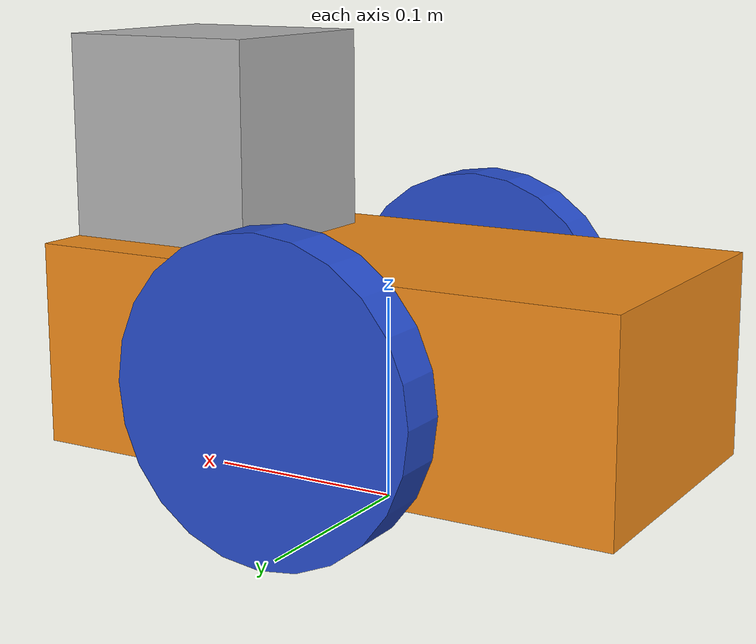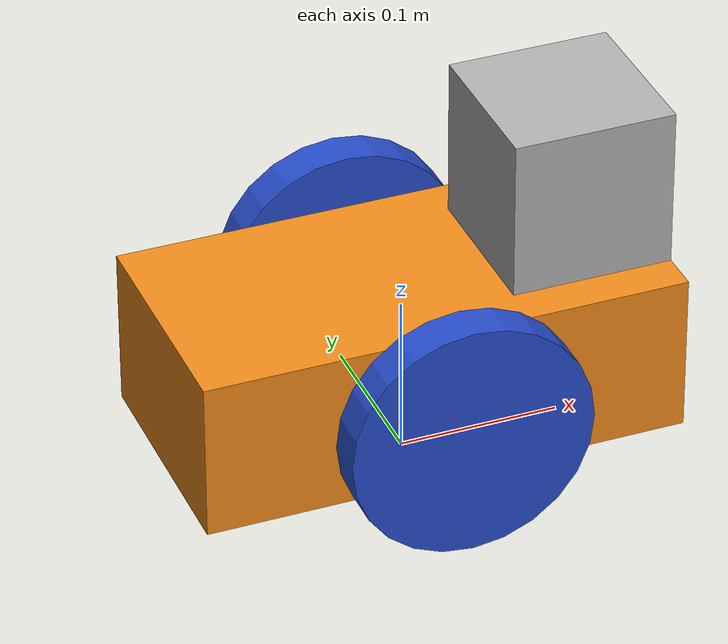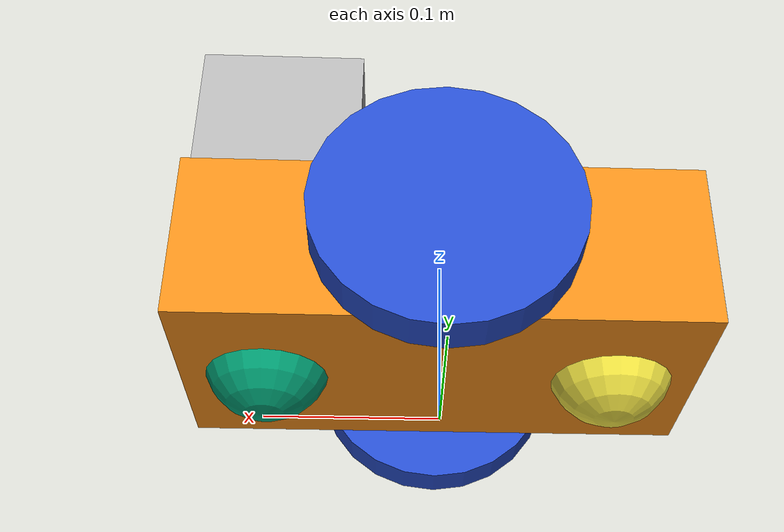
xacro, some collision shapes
<?xml version='1.0'?>

<robot name="myrobot" xmlns:xacro="http://www.ros.org/wiki/xacro">

  <xacro:property name="cameraSize" value="0.05"/>
  <xacro:property name="cameraMass" value="0.15"/>
  <xacro:property name="wheeldiam" value="0.15" />
  <xacro:property name="wheel_separation" value="0.20"/>
  <xacro:property name="M_PI" value="3.1415926535897931" />
  <xacro:property name="chassis_len" value="0.3" />

  <xacro:include filename="$(find mybot_description)/urdf/materials.xacro" />
  <xacro:include filename="$(find mybot_description)/urdf/mybot.gazebo.xacro" />

  <link name="base_link" />

  <!-- for robot base frame -->
  <link name='chassis'>

    <visual>
      <origin xyz="0 0 0" rpy="0 0 0"/>
      <geometry>
        <box size="${chassis_len} ${wheel_separation - 0.05} .1"/>
      </geometry>
      <material name="orange"/>
    </visual>

    <collision>
      <geometry>
        <box size="${chassis_len} ${wheel_separation - 0.05} .1"/>
      </geometry>
    </collision>

    <inertial>
      <mass value="15.0"/>
      <inertia
          ixx="0.5" ixy="0" ixz="0"
          iyy="1.0" iyz="0"
          izz="0.1"
      />
    </inertial>
  </link>

  <joint name="base_to_chassis_joint" type="fixed">
    <parent link="base_link"/>
    <child link="chassis"/>
    <origin xyz="0 0 ${wheeldiam/2}"/>
  </joint>

<!-- for caster -->
  <xacro:macro name="caster_visual" params="prefix reflect">
    <link name='${prefix}_caster_visual'>
      <visual>
        <geometry>
          <sphere radius="${wheeldiam/4}"/>
        </geometry>
      </visual>

      <collision>
        <geometry>
          <sphere radius="${wheeldiam/4}"/>
        </geometry>
        <surface>
          <friction>
            <ode>
              <mu>0</mu>
              <mu2>0</mu2>
              <slip1>1.0</slip1>
              <slip2>1.0</slip2>
            </ode>
          </friction>
        </surface>
      </collision>

      <inertial>
        <mass value="0.1"/>
        <origin xyz="0.0 0 0.1" rpy="0 0 0"/>
        <inertia
            ixx="0.5" ixy="0" ixz="0"
            iyy="1.0" iyz="0"
            izz="0.1"
        />
      </inertial>
    </link>

    <joint name="${prefix}_chassis_joint" type="fixed">
        <parent link="chassis"/>
        <child link="${prefix}_caster_visual"/>
        <origin xyz="${reflect*wheel_separation/2} 0 -${wheeldiam/4}"/>
    </joint>
  </xacro:macro>

  <xacro:caster_visual prefix="front" reflect="1"/>
  <xacro:caster_visual prefix="back" reflect="-1"/>

<!-- for wheel -->
  <xacro:macro name="wheel" params="prefix reflect">

    <link name="${prefix}_wheel">
      <visual>
        <origin xyz="0 0 0" rpy="${M_PI/2} 0 0"/>
        <geometry>
          <cylinder radius="${wheeldiam/2}" length="0.025"/>
        </geometry>
        <material name="blue"/>
      </visual>

      <collision>
        <origin xyz="0 0 0" rpy="${M_PI/2} 0 0"/>
        <geometry>
          <cylinder radius="${wheeldiam/2}" length="0.05"/>
        </geometry>
      </collision>

      <inertial>
        <origin xyz="0 0 0" rpy="${M_PI/2} 0 0"/>
        <mass value="2.5"/>
        <cylinder_inertia m="5" r="0.1" h="0.05"/>
        <inertia
          ixx="1.0" ixy="0.0" ixz="0.0"
          iyy="1.0" iyz="0.0"
          izz="1.0"/>
      </inertial>
    </link>

    <joint name="${prefix}_wheel_hinge" type="continuous">
      <origin xyz="0 ${reflect*wheel_separation/2} 0" rpy="0 0 0"/>
      <child link="${prefix}_wheel"/>
      <parent link="chassis"/>
      <axis xyz="0 1 0" rpy="0 0 0"/>
      <limit effort="100" velocity="100"/>
      <joint_properties damping="0.0" friction="0.0"/>
    </joint>

  </xacro:macro>

  <xacro:wheel prefix="right" reflect="-1" />
  <xacro:wheel prefix="left" reflect="1" />

  <!-- for camera  -->
  <link name="camera">
    <collision>
      <origin xyz="0 0 0" rpy="0 0 0"/>
      <geometry>
        <box size="${cameraSize} ${cameraSize} ${cameraSize}"/>
      </geometry>
    </collision>

    <visual>
      <origin xyz="0 0 0" rpy="0 0 0"/>
      <geometry>
        <box size="${cameraSize} ${cameraSize} ${cameraSize}"/>
      </geometry>
      <material name="green"/>
    </visual>

    <inertial>
      <mass value="${cameraMass}" />
      <origin xyz="0 0 0" rpy="0 0 0"/>
      <box_inertia m="${cameraMass}" x="${cameraSize}" y="${cameraSize}" z="${cameraSize}" />
      <inertia ixx="1e-6" ixy="0" ixz="0" iyy="1e-6" iyz="0" izz="1e-6" />
    </inertial>

  </link>

  <joint name="camera_joint" type="fixed">
    <axis xyz="0 1 0" />
    <origin xyz="${wheel_separation/2} 0 ${0.05 + cameraSize/2}" rpy="0 0 0"/>
    <parent link="chassis"/>
    <child link="camera"/>
  </joint>

  <!-- Hokuyo Laser -->
  <link name="hokuyo">
    <visual>
      <origin xyz="0 0 0" rpy="0 0 0"/>
      <geometry>
        <mesh filename="package://mybot_description/meshes/hokuyo.dae"/>
      </geometry>
    </visual>

    <collision>
      <origin xyz="0 0 0" rpy="0 0 0"/>
      <geometry>
        <box size="0.1 0.1 0.1"/>
      </geometry>
    </collision>

    <inertial>
      <mass value="1e-5" />
      <origin xyz="0 0 0" rpy="0 0 0"/>
      <inertia ixx="1e-6" ixy="0" ixz="0" iyy="1e-6" iyz="0" izz="1e-6" />
    </inertial>

  </link>

  <joint name="hokuyo_joint" type="fixed">
    <axis xyz="0 1 0" />
    <origin xyz="${wheel_separation/2} 0 ${0.1}" rpy="0 0 0"/>
    <parent link="chassis"/>
    <child link="hokuyo"/>
  </joint>

</robot>
